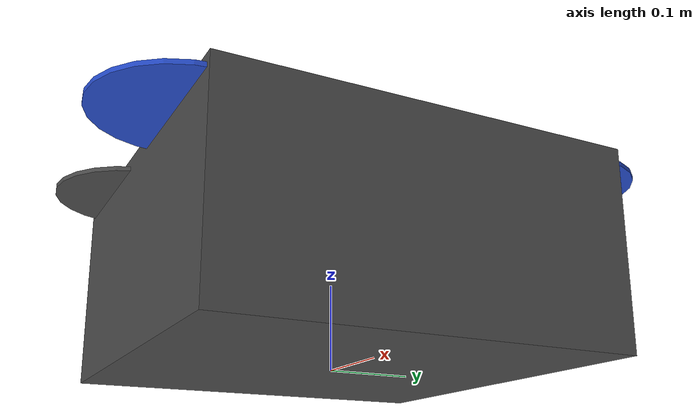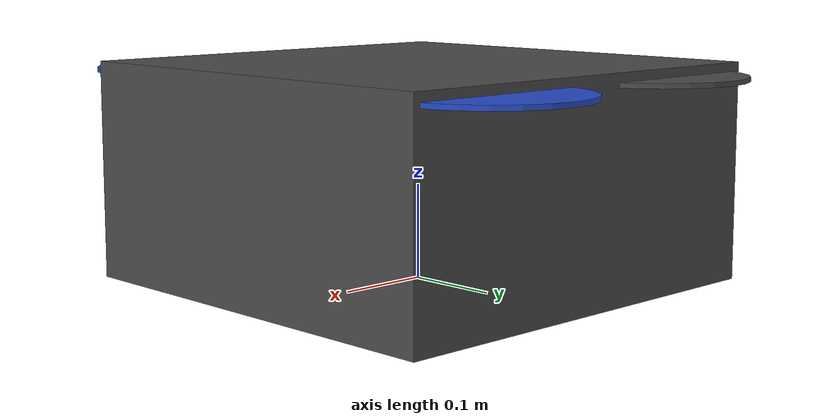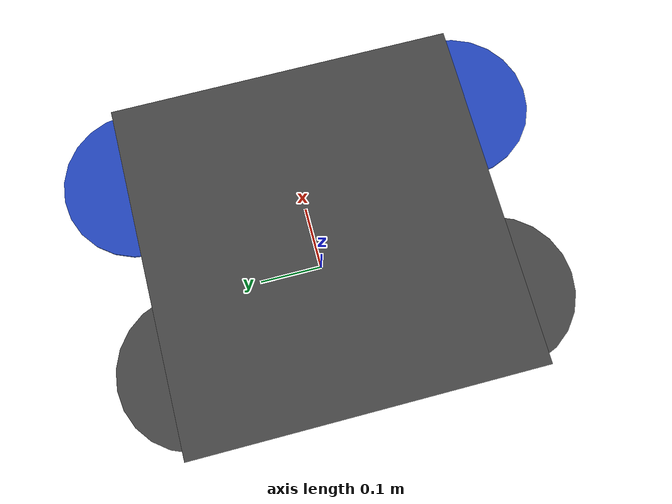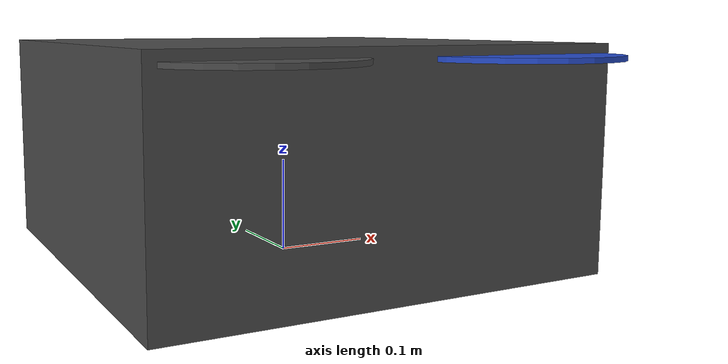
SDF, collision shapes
<?xml version='1.0'?>
<sdf version="1.6" xmlns:xacro='http://ros.org/wiki/xacro'>
  <model name="iris_demo_realsense">
    <include>
      <uri>model://iris_with_standoffs</uri>
    </include>
    <include>
      <uri>model://realsense_camera</uri>
      <pose>0 0.05 0.1 0 0 0</pose>
    </include>

    <!-- plugins -->
    <plugin name="rotor_0_blade_1" filename="libLiftDragPlugin.so">
      <a0>0.3</a0>
      <alpha_stall>1.4</alpha_stall>
      <cla>4.2500</cla>
      <cda>0.10</cda>
      <cma>0.00</cma>
      <cla_stall>-0.025</cla_stall>
      <cda_stall>0.0</cda_stall>
      <cma_stall>0.0</cma_stall>
      <area>0.002</area>
      <air_density>1.2041</air_density>
      <cp>0.084 0 0</cp>
      <forward>0 1 0</forward>
      <upward>0 0 1</upward>
      <link_name>iris::rotor_0</link_name>
    </plugin>
    <plugin name="rotor_0_blade_2" filename="libLiftDragPlugin.so">
      <a0>0.3</a0>
      <alpha_stall>1.4</alpha_stall>
      <cla>4.2500</cla>
      <cda>0.10</cda>
      <cma>0.00</cma>
      <cla_stall>-0.025</cla_stall>
      <cda_stall>0.0</cda_stall>
      <cma_stall>0.0</cma_stall>
      <area>0.002</area>
      <air_density>1.2041</air_density>
      <cp>-0.084 0 0</cp>
      <forward>0 -1 0</forward>
      <upward>0 0 1</upward>
      <link_name>iris::rotor_0</link_name>
    </plugin>

    <plugin name="rotor_1_blade_1" filename="libLiftDragPlugin.so">
      <a0>0.3</a0>
      <alpha_stall>1.4</alpha_stall>
      <cla>4.2500</cla>
      <cda>0.10</cda>
      <cma>0.00</cma>
      <cla_stall>-0.025</cla_stall>
      <cda_stall>0.0</cda_stall>
      <cma_stall>0.0</cma_stall>
      <area>0.002</area>
      <air_density>1.2041</air_density>
      <cp>0.084 0 0</cp>
      <forward>0 1 0</forward>
      <upward>0 0 1</upward>
      <link_name>iris::rotor_1</link_name>
    </plugin>
    <plugin name="rotor_1_blade_2" filename="libLiftDragPlugin.so">
      <a0>0.3</a0>
      <alpha_stall>1.4</alpha_stall>
      <cla>4.2500</cla>
      <cda>0.10</cda>
      <cma>0.00</cma>
      <cla_stall>-0.025</cla_stall>
      <cda_stall>0.0</cda_stall>
      <cma_stall>0.0</cma_stall>
      <area>0.002</area>
      <air_density>1.2041</air_density>
      <cp>-0.084 0 0</cp>
      <forward>0 -1 0</forward>
      <upward>0 0 1</upward>
      <link_name>iris::rotor_1</link_name>
    </plugin>

    <plugin name="rotor_2_blade_1" filename="libLiftDragPlugin.so">
      <a0>0.3</a0>
      <alpha_stall>1.4</alpha_stall>
      <cla>4.2500</cla>
      <cda>0.10</cda>
      <cma>0.00</cma>
      <cla_stall>-0.025</cla_stall>
      <cda_stall>0.0</cda_stall>
      <cma_stall>0.0</cma_stall>
      <area>0.002</area>
      <air_density>1.2041</air_density>
      <cp>0.084 0 0</cp>
      <forward>0 -1 0</forward>
      <upward>0 0 1</upward>
      <link_name>iris::rotor_2</link_name>
    </plugin>
    <plugin name="rotor_2_blade_2" filename="libLiftDragPlugin.so">
      <a0>0.3</a0>
      <alpha_stall>1.4</alpha_stall>
      <cla>4.2500</cla>
      <cda>0.10</cda>
      <cma>0.00</cma>
      <cla_stall>-0.025</cla_stall>
      <cda_stall>0.0</cda_stall>
      <cma_stall>0.0</cma_stall>
      <area>0.002</area>
      <air_density>1.2041</air_density>
      <cp>-0.084 0 0</cp>
      <forward>0 1 0</forward>
      <upward>0 0 1</upward>
      <link_name>iris::rotor_2</link_name>
    </plugin>

    <plugin name="rotor_3_blade_1" filename="libLiftDragPlugin.so">
      <a0>0.3</a0>
      <alpha_stall>1.4</alpha_stall>
      <cla>4.2500</cla>
      <cda>0.10</cda>
      <cma>0.00</cma>
      <cla_stall>-0.025</cla_stall>
      <cda_stall>0.0</cda_stall>
      <cma_stall>0.0</cma_stall>
      <area>0.002</area>
      <air_density>1.2041</air_density>
      <cp>0.084 0 0</cp>
      <forward>0 -1 0</forward>
      <upward>0 0 1</upward>
      <link_name>iris::rotor_3</link_name>
    </plugin>
    <plugin name="rotor_3_blade_2" filename="libLiftDragPlugin.so">
      <a0>0.3</a0>
      <alpha_stall>1.4</alpha_stall>
      <cla>4.2500</cla>
      <cda>0.10</cda>
      <cma>0.00</cma>
      <cla_stall>-0.025</cla_stall>
      <cda_stall>0.0</cda_stall>
      <cma_stall>0.0</cma_stall>
      <area>0.002</area>
      <air_density>1.2041</air_density>
      <cp>-0.084 0 0</cp>
      <forward>0 1 0</forward>
      <upward>0 0 1</upward>
      <link_name>iris::rotor_3</link_name>
    </plugin>
    <plugin name="arducopter_plugin" filename="libArduPilotPlugin.so">
      <fdm_addr>127.0.0.1</fdm_addr>
      <fdm_port_in>9002</fdm_port_in>
      <fdm_port_out>9003</fdm_port_out>
      <!--
          Require by APM :
          Only change model and gazebo from XYZ to XY-Z coordinates
      -->
      <modelXYZToAirplaneXForwardZDown>0 0 0 3.141593 0 0</modelXYZToAirplaneXForwardZDown>
      <gazeboXYZToNED>0 0 0 3.141593 0 0</gazeboXYZToNED>
      <imuName>iris_demo::iris::iris/imu_link::imu_sensor</imuName>
      <connectionTimeoutMaxCount>5</connectionTimeoutMaxCount>
      <control channel="0">
      <!--
          incoming control command [0, 1]
          so offset it by 0 to get [0, 1]
          and divide max target by 1.
          offset = 0
          multiplier = 838 max rpm / 1 = 838
        -->
        <type>VELOCITY</type>
        <offset>0</offset>
        <p_gain>0.20</p_gain>
        <i_gain>0</i_gain>
        <d_gain>0</d_gain>
        <i_max>0</i_max>
        <i_min>0</i_min>
        <cmd_max>2.5</cmd_max>
        <cmd_min>-2.5</cmd_min>
        <jointName>iris::rotor_0_joint</jointName>
        <multiplier>838</multiplier>
        <controlVelocitySlowdownSim>1</controlVelocitySlowdownSim>
      </control>
      <control channel="1">
        <type>VELOCITY</type>
        <offset>0</offset>
        <p_gain>0.20</p_gain>
        <i_gain>0</i_gain>
        <d_gain>0</d_gain>
        <i_max>0</i_max>
        <i_min>0</i_min>
        <cmd_max>2.5</cmd_max>
        <cmd_min>-2.5</cmd_min>
        <jointName>iris::rotor_1_joint</jointName>
        <multiplier>838</multiplier>
        <controlVelocitySlowdownSim>1</controlVelocitySlowdownSim>
      </control>
      <control channel="2">
        <type>VELOCITY</type>
        <offset>0</offset>
        <p_gain>0.20</p_gain>
        <i_gain>0</i_gain>
        <d_gain>0</d_gain>
        <i_max>0</i_max>
        <i_min>0</i_min>
        <cmd_max>2.5</cmd_max>
        <cmd_min>-2.5</cmd_min>
        <jointName>iris::rotor_2_joint</jointName>
        <multiplier>-838</multiplier>
        <controlVelocitySlowdownSim>1</controlVelocitySlowdownSim>
      </control>
      <control channel="3">
        <type>VELOCITY</type>
        <offset>0</offset>
        <p_gain>0.20</p_gain>
        <i_gain>0</i_gain>
        <d_gain>0</d_gain>
        <i_max>0</i_max>
        <i_min>0</i_min>
        <cmd_max>2.5</cmd_max>
        <cmd_min>-2.5</cmd_min>
        <jointName>iris::rotor_3_joint</jointName>
        <multiplier>-838</multiplier>
        <controlVelocitySlowdownSim>1</controlVelocitySlowdownSim>
      </control>
    </plugin>

  </model>
</sdf>

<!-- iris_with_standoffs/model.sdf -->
<sdf version='1.6'>
  <model name='iris'>
    <pose>0 0 0.194923 0 0 0</pose>
    <link name='base_link'>
      <velocity_decay>
        <linear>0.0</linear>
        <angular>0.0</angular>
      </velocity_decay>
      <inertial>
        <pose>0 0 0 0 0 0</pose>
        <mass>1.5</mass>
        <inertia>
          <ixx>0.008</ixx>
          <ixy>0</ixy>
          <ixz>0</ixz>
          <iyy>0.015</iyy>
          <iyz>0</iyz>
          <izz>0.017</izz>
        </inertia>
      </inertial>
      <collision name='base_link_collision'>
        <pose>0 0 -0.08 0 0 0</pose>
        <geometry>
          <box>
            <size>0.47 0.47 0.23</size>
          </box>
        </geometry>
        <surface>
          <contact>
            <ode>
              <max_vel>100.0</max_vel>
              <min_depth>0.001</min_depth>
            </ode>
          </contact>
          <friction>
            <ode>
              <mu>1.0</mu>
              <mu2>1.0</mu2>
            </ode>
          </friction>
        </surface>
      </collision>
      <visual name='base_link_visual'>
        <geometry>
          <mesh>
            <uri>model://iris_with_standoffs/meshes/iris.dae</uri>
          </mesh>
        </geometry>
        <material>
          <script>
            <name>Gazebo/DarkGrey</name>
          </script>
        </material>
      </visual>

      <visual name='front_left_leg_visual'>
        <pose>0.123 0.22 -0.11 0 0 0</pose>
        <geometry>
          <cylinder>
            <radius>0.005</radius>
            <length>0.17</length>
          </cylinder>
        </geometry>
        <material>
          <script>
            <name>Gazebo/FlatBlack</name>
            <uri>file://media/materials/scripts/gazebo.material</uri>
          </script>
        </material>
      </visual>
      <visual name='front_right_leg_visual'>
        <pose>0.123 -0.22 -0.11 0 0 0</pose>
        <geometry>
          <cylinder>
            <radius>0.005</radius>
            <length>0.17</length>
          </cylinder>
        </geometry>
        <material>
          <script>
            <name>Gazebo/FlatBlack</name>
            <uri>file://media/materials/scripts/gazebo.material</uri>
          </script>
        </material>
      </visual>
      <visual name='rear_left_leg_visual'>
        <pose>-0.140 0.21 -0.11 0 0 0</pose>
        <geometry>
          <cylinder>
            <radius>0.005</radius>
            <length>0.17</length>
          </cylinder>
        </geometry>
        <material>
          <script>
            <name>Gazebo/FlatBlack</name>
            <uri>file://media/materials/scripts/gazebo.material</uri>
          </script>
        </material>
      </visual>
      <visual name='rear_right_leg_visual'>
        <pose>-0.140 -0.21 -0.11 0 0 0</pose>
        <geometry>
          <cylinder>
            <radius>0.005</radius>
            <length>0.17</length>
          </cylinder>
        </geometry>
        <material>
          <script>
            <name>Gazebo/FlatBlack</name>
            <uri>file://media/materials/scripts/gazebo.material</uri>
          </script>
        </material>
      </visual>
    </link>
    <link name='iris/ground_truth/odometry_sensorgt_link'>
      <pose>0 0 0 0 -0 0</pose>
      <inertial>
        <pose>0 0 0 0 -0 0</pose>
        <mass>0.15</mass>
        <inertia>
          <ixx>0.0001</ixx>
          <ixy>0</ixy>
          <ixz>0</ixz>
          <iyy>0.0002</iyy>
          <iyz>0</iyz>
          <izz>0.0002</izz>
        </inertia>
      </inertial>
    </link>
    <joint name='iris/ground_truth/odometry_sensorgt_joint' type='revolute'>
      <child>iris/ground_truth/odometry_sensorgt_link</child>
      <parent>base_link</parent>
      <axis>
        <xyz>0 0 1</xyz>
        <limit>
          <lower>0</lower>
          <upper>0</upper>
          <effort>0</effort>
          <velocity>0</velocity>
        </limit>
        <dynamics>
          <damping>1.0</damping>
        </dynamics>
        <use_parent_model_frame>1</use_parent_model_frame>
      </axis>
      <physics>
        <ode>
          <implicit_spring_damper>1</implicit_spring_damper>
        </ode>
      </physics>
    </joint>
    <link name='iris/imu_link'>
      <inertial>
        <pose>0 0 0 0 0 0</pose>
        <mass>0.15</mass>
        <inertia>
          <ixx>0.00001</ixx>
          <ixy>0</ixy>
          <ixz>0</ixz>
          <iyy>0.00002</iyy>
          <iyz>0</iyz>
          <izz>0.00002</izz>
        </inertia>
      </inertial>
      <sensor name="imu_sensor" type="imu">
        <pose>0 0 0 3.141593 0 0</pose>
        <always_on>1</always_on>
        <update_rate>1000.0</update_rate>
      </sensor>
    </link>
    <joint name='iris/imu_joint' type='revolute'>
      <child>iris/imu_link</child>
      <parent>base_link</parent>
      <axis>
        <xyz>0 0 1</xyz>
        <limit>
          <lower>0</lower>
          <upper>0</upper>
          <effort>0</effort>
          <velocity>0</velocity>
        </limit>
        <dynamics>
          <damping>1.0</damping>
        </dynamics>
        <use_parent_model_frame>1</use_parent_model_frame>
      </axis>
      <physics>
        <ode>
          <implicit_spring_damper>1</implicit_spring_damper>
        </ode>
      </physics>
    </joint>
    <link name='rotor_0'>
      <pose>0.13 -0.22 0.023 0 -0 0</pose>
      <inertial>
        <pose>0 0 0 0 -0 0</pose>
        <mass>0.025</mass>
        <inertia>
          <ixx>9.75e-06</ixx>
          <ixy>0</ixy>
          <ixz>0</ixz>
          <iyy>0.000166704</iyy>
          <iyz>0</iyz>
          <izz>0.000167604</izz>
        </inertia>
      </inertial>
      <collision name='rotor_0_collision'>
        <pose>0 0 0 0 -0 0</pose>
        <geometry>
          <cylinder>
            <length>0.005</length>
            <radius>0.1</radius>
          </cylinder>
        </geometry>
        <surface>
          <contact>
            <ode/>
          </contact>
          <friction>
            <ode/>
          </friction>
        </surface>
      </collision>
      <visual name='rotor_0_visual'>
        <pose>0 0 0 0 -0 0</pose>
        <geometry>
          <mesh>
            <scale>1 1 1</scale>
            <uri>model://iris_with_standoffs/meshes/iris_prop_ccw.dae</uri>
          </mesh>
        </geometry>
        <material>
          <script>
            <name>Gazebo/Blue</name>
            <uri>__default__</uri>
          </script>
        </material>
      </visual>
      <gravity>1</gravity>
      <velocity_decay/>
      <self_collide>0</self_collide>
    </link>
    <joint name='rotor_0_joint' type='revolute'>
      <child>rotor_0</child>
      <parent>base_link</parent>
      <axis>
        <xyz>0 0 1</xyz>
        <limit>
          <lower>-1e+16</lower>
          <upper>1e+16</upper>
        </limit>
        <dynamics>
          <damping>0.004</damping>
        </dynamics>
        <use_parent_model_frame>1</use_parent_model_frame>
      </axis>
      <physics>
        <ode>
          <implicit_spring_damper>1</implicit_spring_damper>
        </ode>
      </physics>
    </joint>
    <link name='rotor_1'>
      <pose>-0.13 0.2 0.023 0 -0 0</pose>
      <inertial>
        <pose>0 0 0 0 -0 0</pose>
        <mass>0.025</mass>
        <inertia>
          <ixx>9.75e-06</ixx>
          <ixy>0</ixy>
          <ixz>0</ixz>
          <iyy>0.000166704</iyy>
          <iyz>0</iyz>
          <izz>0.000167604</izz>
        </inertia>
      </inertial>
      <collision name='rotor_1_collision'>
        <pose>0 0 0 0 -0 0</pose>
        <geometry>
          <cylinder>
            <length>0.005</length>
            <radius>0.1</radius>
          </cylinder>
        </geometry>
        <surface>
          <contact>
            <ode/>
          </contact>
          <friction>
            <ode/>
          </friction>
        </surface>
      </collision>
      <visual name='rotor_1_visual'>
        <pose>0 0 0 0 -0 0</pose>
        <geometry>
          <mesh>
            <scale>1 1 1</scale>
            <uri>model://iris_with_standoffs/meshes/iris_prop_ccw.dae</uri>
          </mesh>
        </geometry>
        <material>
          <script>
            <name>Gazebo/DarkGrey</name>
            <uri>__default__</uri>
          </script>
        </material>
      </visual>
      <gravity>1</gravity>
      <velocity_decay/>
      <self_collide>0</self_collide>
    </link>
    <joint name='rotor_1_joint' type='revolute'>
      <child>rotor_1</child>
      <parent>base_link</parent>
      <axis>
        <xyz>0 0 1</xyz>
        <limit>
          <lower>-1e+16</lower>
          <upper>1e+16</upper>
        </limit>
        <dynamics>
          <damping>0.004</damping>
        </dynamics>
        <use_parent_model_frame>1</use_parent_model_frame>
      </axis>
      <physics>
        <ode>
          <implicit_spring_damper>1</implicit_spring_damper>
        </ode>
      </physics>
    </joint>
    <link name='rotor_2'>
      <pose>0.13 0.22 0.023 0 -0 0</pose>
      <inertial>
        <pose>0 0 0 0 -0 0</pose>
        <mass>0.025</mass>
        <inertia>
          <ixx>9.75e-06</ixx>
          <ixy>0</ixy>
          <ixz>0</ixz>
          <iyy>0.000166704</iyy>
          <iyz>0</iyz>
          <izz>0.000167604</izz>
        </inertia>
      </inertial>
      <collision name='rotor_2_collision'>
        <pose>0 0 0 0 -0 0</pose>
        <geometry>
          <cylinder>
            <length>0.005</length>
            <radius>0.1</radius>
          </cylinder>
        </geometry>
        <surface>
          <contact>
            <ode/>
          </contact>
          <friction>
            <ode/>
          </friction>
        </surface>
      </collision>
      <visual name='rotor_2_visual'>
        <pose>0 0 0 0 -0 0</pose>
        <geometry>
          <mesh>
            <scale>1 1 1</scale>
            <uri>model://iris_with_standoffs/meshes/iris_prop_cw.dae</uri>
          </mesh>
        </geometry>
        <material>
          <script>
            <name>Gazebo/Blue</name>
            <uri>__default__</uri>
          </script>
        </material>
      </visual>
      <gravity>1</gravity>
      <velocity_decay/>
      <self_collide>0</self_collide>
    </link>
    <joint name='rotor_2_joint' type='revolute'>
      <child>rotor_2</child>
      <parent>base_link</parent>
      <axis>
        <xyz>0 0 1</xyz>
        <limit>
          <lower>-1e+16</lower>
          <upper>1e+16</upper>
        </limit>
        <dynamics>
          <damping>0.004</damping>
        </dynamics>
        <use_parent_model_frame>1</use_parent_model_frame>
      </axis>
      <physics>
        <ode>
          <implicit_spring_damper>1</implicit_spring_damper>
        </ode>
      </physics>
    </joint>
    <link name='rotor_3'>
      <pose>-0.13 -0.2 0.023 0 -0 0</pose>
      <inertial>
        <pose>0 0 0 0 -0 0</pose>
        <mass>0.025</mass>
        <inertia>
          <ixx>9.75e-06</ixx>
          <ixy>0</ixy>
          <ixz>0</ixz>
          <iyy>0.000166704</iyy>
          <iyz>0</iyz>
          <izz>0.000167604</izz>
        </inertia>
      </inertial>
      <collision name='rotor_3_collision'>
        <pose>0 0 0 0 -0 0</pose>
        <geometry>
          <cylinder>
            <length>0.005</length>
            <radius>0.1</radius>
          </cylinder>
        </geometry>
        <surface>
          <contact>
            <ode/>
          </contact>
          <friction>
            <ode/>
          </friction>
        </surface>
      </collision>
      <visual name='rotor_3_visual'>
        <pose>0 0 0 0 -0 0</pose>
        <geometry>
          <mesh>
            <scale>1 1 1</scale>
            <uri>model://iris_with_standoffs/meshes/iris_prop_cw.dae</uri>
          </mesh>
        </geometry>
        <material>
          <script>
            <name>Gazebo/DarkGrey</name>
            <uri>__default__</uri>
          </script>
        </material>
      </visual>
      <gravity>1</gravity>
      <velocity_decay/>
      <self_collide>0</self_collide>
    </link>
    <joint name='rotor_3_joint' type='revolute'>
      <child>rotor_3</child>
      <parent>base_link</parent>
      <axis>
        <xyz>0 0 1</xyz>
        <limit>
          <lower>-1e+16</lower>
          <upper>1e+16</upper>
        </limit>
        <dynamics>
          <damping>0.004</damping>
        </dynamics>
        <use_parent_model_frame>1</use_parent_model_frame>
      </axis>
      <physics>
        <ode>
          <implicit_spring_damper>1</implicit_spring_damper>
        </ode>
      </physics>
    </joint>
    <static>0</static>
  </model>
</sdf>

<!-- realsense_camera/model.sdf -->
<sdf version="1.6">
  <model name="realsense_camera">
    <link name="camera_link">
      <inertial>
        <mass>0.0564</mass>
        <inertia>
          <ixx>4.1e-05</ixx>
          <ixy>0</ixy>
          <ixz>0</ixz>
          <iyy>5.9e-06</iyy>
          <iyz>0</iyz>
          <izz>5.9e-06</izz>
        </inertia>
      </inertial>
      <self_collide>0</self_collide>
      <kinematic>0</kinematic>
      <gravity>1</gravity>
      <visual name="visual">
        <geometry>
         <mesh>
            <uri>model://realsense_camera/meshes/realsense_d435.stl</uri>
          </mesh>
        </geometry>
      </visual>
      <collision name='collision'>
        <pose>0 0 0 0 0 0</pose>
        <geometry>
          <box>
            <size>0.02505 0.090 0.025</size>
          </box>
        </geometry>
        <surface>
          <friction>
            <ode>
              <mu>1</mu>
              <mu2>1</mu2>
              <fdir1>0 0 0</fdir1>
              <slip1>0</slip1>
              <slip2>0</slip2>
            </ode>
          </friction>
          <bounce>
            <restitution_coefficient>0</restitution_coefficient>
            <threshold>1e+06</threshold>
          </bounce>
          <contact>
            <collide_without_contact>0</collide_without_contact>
            <collide_without_contact_bitmask>1</collide_without_contact_bitmask>
            <collide_bitmask>1</collide_bitmask>
            <ode>
              <soft_cfm>0</soft_cfm>
              <soft_erp>0.2</soft_erp>
              <kp>1e+13</kp>
              <kd>1</kd>
              <max_vel>0.01</max_vel>
              <min_depth>0</min_depth>
            </ode>
            <bullet>
              <split_impulse>1</split_impulse>
              <split_impulse_penetration_threshold>-0.01</split_impulse_penetration_threshold>
              <soft_cfm>0</soft_cfm>
              <soft_erp>0.2</soft_erp>
              <kp>1e+13</kp>
              <kd>1</kd>
            </bullet>
          </contact>
        </surface>
      </collision>
    </link>

    <link name="camera_color_frame">
      <pose>0.0325 0 0 3.14 -1.57 1.57</pose>
      <inertial>
        <pose frame=''>0 0 0 0 -0 0</pose>
        <mass>0.0015</mass>
        <inertia>
          <ixx>1e-06</ixx>
          <ixy>0</ixy>
          <ixz>0</ixz>
          <iyy>1e-06</iyy>
          <iyz>0</iyz>
          <izz>1e-06</izz>
        </inertia>
      </inertial>
      <sensor name="color" type="camera">
        <camera name="color">
          <horizontal_fov>1.571</horizontal_fov>
          <image>
            <width>640</width>
            <height>480</height>
            <format>RGB_INT8</format>
          </image>
          <clip>
            <near>0.1</near>
            <far>100</far>
          </clip>
          <noise>
            <type>gaussian</type>
            <mean>0.0</mean>
            <stddev>0.007</stddev>
          </noise>
        </camera>
        <always_on>1</always_on>
        <update_rate>30</update_rate>
        <visualize>1</visualize>
      </sensor>
    </link>
    <joint name='camera_color_joint' type='revolute'>
      <child>camera_color_frame</child>
      <parent>camera_link</parent>
      <axis>
        <xyz>1 0 0</xyz>
        <limit>
          <lower>0</lower>
          <upper>0</upper>
          <effort>0</effort>
          <velocity>0</velocity>
        </limit>
        <dynamics>
          <spring_reference>0</spring_reference>
          <spring_stiffness>0</spring_stiffness>
        </dynamics>
        <use_parent_model_frame>1</use_parent_model_frame>
      </axis>
    </joint>

    <link name="camera_ired1_frame">
      <pose>0.02 0 0 3.14 -1.57 1.57</pose>
      <inertial>
        <pose frame=''>0 0 0 0 -0 0</pose>
        <mass>0.0015</mass>
        <inertia>
          <ixx>1e-06</ixx>
          <ixy>0</ixy>
          <ixz>0</ixz>
          <iyy>1e-06</iyy>
          <iyz>0</iyz>
          <izz>1e-06</izz>
        </inertia>
      </inertial>
      <sensor name="ired1" type="camera">
        <camera name="ired1">
          <horizontal_fov>1.571</horizontal_fov>
          <image>
            <width>640</width>
            <height>480</height>
            <format>L_INT8</format>
          </image>
          <clip>
            <near>0.1</near>
            <far>100</far>
          </clip>
          <noise>
            <type>gaussian</type>
            <mean>0.0</mean>
            <stddev>0.007</stddev>
          </noise>
        </camera>
        <always_on>1</always_on>
        <update_rate>30</update_rate>
        <visualize>0</visualize>
      </sensor>
    </link>
    <joint name='camera_ired1_joint' type='revolute'>
      <child>camera_ired1_frame</child>
      <parent>camera_link</parent>
      <axis>
        <xyz>1 0 0</xyz>
        <limit>
          <lower>0</lower>
          <upper>0</upper>
          <effort>0</effort>
          <velocity>0</velocity>
        </limit>
        <dynamics>
          <spring_reference>0</spring_reference>
          <spring_stiffness>0</spring_stiffness>
        </dynamics>
        <use_parent_model_frame>1</use_parent_model_frame>
      </axis>
    </joint>

    <link name="camera_ired2_frame">
      <pose>-0.03 0 0 3.14 -1.57 1.57</pose>
      <inertial>
        <pose frame=''>0 0 0 0 -0 0</pose>
        <mass>0.0015</mass>
        <inertia>
          <ixx>1e-06</ixx>
          <ixy>0</ixy>
          <ixz>0</ixz>
          <iyy>1e-06</iyy>
          <iyz>0</iyz>
          <izz>1e-06</izz>
        </inertia>
      </inertial>
      <sensor name="ired2" type="camera">
        <camera name="ired2">
          <horizontal_fov>1.571</horizontal_fov>
          <image>
            <width>640</width>
            <height>480</height>
            <format>L_INT8</format>
          </image>
          <clip>
            <near>0.1</near>
            <far>100</far>
          </clip>
          <noise>
            <type>gaussian</type>
            <mean>0.0</mean>
            <stddev>0.007</stddev>
          </noise>
        </camera>
        <always_on>1</always_on>
        <update_rate>30</update_rate>
        <visualize>0</visualize>
      </sensor>
    </link>
    <joint name='camera_ired2_joint' type='revolute'>
      <child>camera_ired2_frame</child>
      <parent>camera_link</parent>
      <axis>
        <xyz>1 0 0</xyz>
        <limit>
          <lower>0</lower>
          <upper>0</upper>
          <effort>0</effort>
          <velocity>0</velocity>
        </limit>
        <dynamics>
          <spring_reference>0</spring_reference>
          <spring_stiffness>0</spring_stiffness>
        </dynamics>
        <use_parent_model_frame>1</use_parent_model_frame>
      </axis>
    </joint>

    <link name="camera_depth_frame">
      <pose>0.0325 0 0 3.14 -1.57 1.57</pose>
      <inertial>
        <pose frame=''>0 0 0 0 -0 0</pose>
        <mass>0.0015</mass>
        <inertia>
          <ixx>1e-06</ixx>
          <ixy>0</ixy>
          <ixz>0</ixz>
          <iyy>1e-06</iyy>
          <iyz>0</iyz>
          <izz>1e-06</izz>
        </inertia>
      </inertial>
      <sensor name="depth" type="depth">
        <camera name="depth">
          <horizontal_fov>1.571</horizontal_fov>
          <image>
            <width>640</width>
            <height>480</height>
          </image>
          <clip>
            <near>0.1</near>
            <far>100</far>
          </clip>
          <noise>
            <type>gaussian</type>
            <mean>0.0</mean>
            <stddev>0.007</stddev>
          </noise>
        </camera>
        <always_on>1</always_on>
        <update_rate>30</update_rate>
        <visualize>0</visualize>

      </sensor>
    </link>
    <joint name='camera_depth_joint' type='revolute'>
      <child>camera_depth_frame</child>
      <parent>camera_link</parent>
      <axis>
        <xyz>1 0 0</xyz>
        <limit>
          <lower>0</lower>
          <upper>0</upper>
          <effort>0</effort>
          <velocity>0</velocity>
        </limit>
        <dynamics>
          <spring_reference>0</spring_reference>
          <spring_stiffness>0</spring_stiffness>
        </dynamics>
        <use_parent_model_frame>1</use_parent_model_frame>
      </axis>
    </joint>

    <plugin name="d435i" filename="librealsense_gazebo_plugin.so">
       <depthUpdateRate>30.0</depthUpdateRate>
       <colorUpdateRate>30.0</colorUpdateRate>
       <infraredUpdateRate>15.0</infraredUpdateRate>
       <depthTopicName>depth/image_raw</depthTopicName>
       <depthCameraInfoTopicName>depth/camera_info</depthCameraInfoTopicName>
       <colorTopicName>color/image_raw</colorTopicName>
       <colorCameraInfoTopicName>color/camera_info</colorCameraInfoTopicName>
       <infrared1TopicName>infra1/image_raw</infrared1TopicName>
       <infrared1CameraInfoTopicName>infra1/camera_info</infrared1CameraInfoTopicName>
       <infrared2TopicName>infra2/image_raw</infrared2TopicName>
       <infrared2CameraInfoTopicName>infra2/camera_info</infrared2CameraInfoTopicName>
       <colorOpticalframeName>camera_color_frame</colorOpticalframeName>
       <depthOpticalframeName>camera_depth_frame</depthOpticalframeName>
       <infrared1OpticalframeName>camera_ired1_frame</infrared1OpticalframeName>
       <infrared2OpticalframeName>camera_ired2_frame</infrared2OpticalframeName>
       <rangeMinDepth>0.2</rangeMinDepth>
       <rangeMaxDepth>10.0</rangeMaxDepth>
       <pointCloud>false</pointCloud>
       <pointCloudTopicName>depth/color/points</pointCloudTopicName>
       <pointCloudCutoff>0.25</pointCloudCutoff>
       <pointCloudCutoffMax>9.0</pointCloudCutoffMax>
     </plugin>

  </model>
</sdf>
